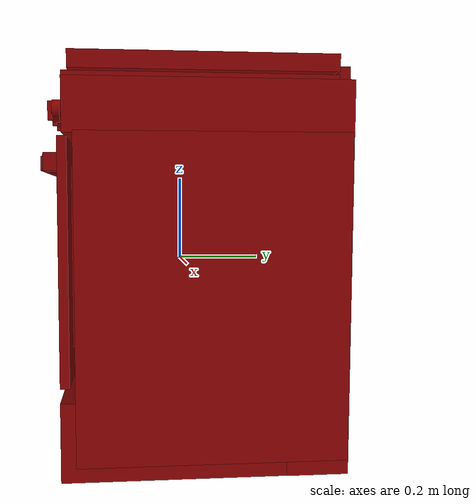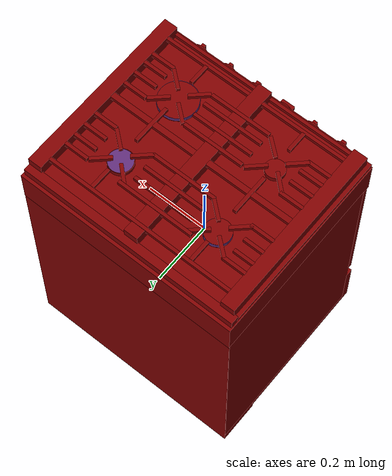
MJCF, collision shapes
<?xml version='1.0' encoding='UTF-8'?>
<mujoco model="model">
  <compiler angle="radian"/>
  <asset>
    <mesh file="visuals/knob_front_left.obj" name="knob_front_left_vis"/>
    <mesh file="visuals/knob_front_right.obj" name="knob_front_right_vis"/>
    <mesh file="visuals/knob_rear_left.obj" name="knob_rear_left_vis"/>
    <mesh file="visuals/knob_rear_right.obj" name="knob_rear_right_vis"/>
    <mesh file="visuals/Body001.obj" name="Body001_vis"/>
    <mesh file="visuals/Door001.obj" name="Door001_vis"/>
    <mesh file="visuals/Door001_Clear.obj" name="Door001_Clear_vis"/>
    <mesh file="visuals/Knob001.obj" name="Knob001_vis"/>
    <mesh file="visuals/Knob002.obj" name="Knob002_vis"/>
    <mesh file="visuals/Shelf001.obj" name="Shelf001_vis"/>
    <texture file="visuals/T_BC001.png" name="Body001_material" type="2d"/>
    <material name="Body001_material" rgba="1 1 1 1.0" texture="Body001_material" shininess="0.1" specular="5"/>
    <texture file="visuals/T_BC001.png" name="knob_front_left_material" type="2d"/>
    <material name="knob_front_left_material" rgba="1 1 1 1.0" texture="knob_front_left_material" shininess="0.4472135901451111" specular="0.3103448502657381"/>
    <texture file="visuals/T_BC001.png" name="knob_front_right_material" type="2d"/>
    <material name="knob_front_right_material" rgba="1 1 1 1.0" texture="knob_front_right_material" shininess="0.4472135901451111" specular="0.3103448502657381"/>
    <texture file="visuals/T_BC001.png" name="knob_rear_left_material" type="2d"/>
    <material name="knob_rear_left_material" rgba="1 1 1 1.0" texture="knob_rear_left_material" shininess="0.4472135901451111" specular="0.3103448502657381"/>
    <texture file="visuals/T_BC001.png" name="knob_rear_right_material" type="2d"/>
    <material name="knob_rear_right_material" rgba="1 1 1 1.0" texture="knob_rear_right_material" shininess="0.4472135901451111" specular="0.3103448502657381"/>
    <texture file="visuals/T_BC001.png" name="Door001_material" type="2d"/>
    <material name="Door001_material" rgba="1 1 1 1.0" texture="Door001_material" shininess="0.1" specular="5"/>
    <texture file="visuals/T_BC001.png" name="Door001_Clear_material" type="2d"/>
    <material name="Door001_Clear_material" rgba="1 1 1 0.5" texture="Door001_Clear_material" shininess="0.5" specular="0.3103448502657381"/>
    <texture file="visuals/T_BC001.png" name="Knob001_material" type="2d"/>
    <material name="Knob001_material" rgba="1 1 1 1.0" texture="Knob001_material" shininess="0.4472135901451111" specular="0.3103448502657381"/>
    <texture file="visuals/T_BC001.png" name="Knob002_material" type="2d"/>
    <material name="Knob002_material" rgba="1 1 1 1.0" texture="Knob002_material" shininess="0.4472135901451111" specular="0.3103448502657381"/>
    <texture file="visuals/T_BC001.png" name="Shelf001_material" type="2d"/>
    <material name="Shelf001_material" rgba="1 1 1 1.0" texture="Shelf001_material" shininess="0.4472135901451111" specular="0.3103448502657381"/>
  </asset>
  <default>
    <default class="visual">
      <geom conaffinity="0" contype="0" group="1" type="mesh"/>
    </default>
    <default class="collision">
      <geom group="0" rgba="0.5 0 0 0.5"/>
    </default>
    <default class="spawn">
      <geom group="0" rgba="1 1 1 0.5" contype="0" conaffinity="0"/>
      <site group="0" rgba="1 1 1 0.5"/>
    </default>
    <default class="region">
      <geom group="1" conaffinity="0" contype="0" rgba="0 1 0 0"/>
    </default>
  </default>
  <worldbody>
    <body>
      <body name="object">
        <site type="cylinder" rgba="0.3 0.4 1 0.5" size="0.059067532420158386 0.0059981681406497955" pos="0.1637333780527115 -0.08896008133888245 0.41712743043899536" name="burner_on_front_right"/>
        <site type="cylinder" rgba="0.3 0.4 1 0.5" size="0.03581749647855759 0.006448989734053612" pos="0.1625681072473526 0.14847798645496368 0.4174721837043762" name="burner_on_rear_right"/>
        <site type="cylinder" rgba="0.3 0.4 1 0.5" size="0.03923388943076134 0.006164595950394869" pos="-0.1613815873861313 0.14856909215450287 0.4168274998664856" name="burner_on_rear_left"/>
        <site type="cylinder" rgba="0.3 0.4 1 0.5" size="0.027678173035383224 0.006031689699739218" pos="-0.16317451000213623 -0.0871630609035492 0.41746026277542114" name="burner_on_front_left"/>
        <geom mesh="Body001_vis" type="mesh" solimp="0.998 0.998 0.001" solref="0.001 1" density="100" friction="0.95 0.3 0.1" class="visual" material="Body001_material"/>
        <geom class="collision" type="box" pos="-0.3228236734867096 0.04421297088265419 -0.06405051052570343" size="0.02653951570391655 0.28820371627807617 0.347449392080307" quat="1.0 0.0 0.0 0.0"/>
        <geom class="collision" type="box" pos="0.32221442461013794 0.044317618012428284 -0.06405049562454224" size="0.02715783752501011 0.2881529629230499 0.3474196195602417" quat="1.0 0.0 0.0 0.0"/>
        <geom class="collision" type="box" pos="4.4401540435501374e-06 0.03426617011427879 0.3346153199672699" size="0.3493633568286896 0.2996474802494049 0.05575976520776749" quat="1.0 0.0 0.0 0.0"/>
        <geom class="collision" type="box" pos="0.0002251090481877327 0.020618697628378868 -0.3580223321914673" size="0.3468468487262726 0.29568082094192505 0.0842985138297081" quat="1.0 0.0 0.0 0.0"/>
        <geom class="collision" type="box" pos="-0.0008288638200610876 0.049210354685783386 0.25344952940940857" size="0.3056583106517792 0.2670842707157135 0.02249942719936371" quat="1.0 0.0 0.0 0.0"/>
        <geom class="collision" type="box" pos="-0.0008288638200610876 0.0492422953248024 -0.2252667397260666" size="0.3038848340511322 0.26707693934440613 0.025592513382434845" quat="1.0 0.0 0.0 0.0"/>
        <geom class="collision" type="box" pos="-0.00036194996209815145 0.26694294810295105 -0.08169431984424591" size="0.34876078367233276 0.06697166711091995 0.36061516404151917" quat="1.0 0.0 0.0 0.0"/>
        <geom class="collision" type="box" pos="-0.00039120158180594444 0.024361329153180122 0.42394471168518066" size="0.021668938919901848 0.2777353525161743 0.018190616741776466" quat="1.0 0.0 0.0 0.0"/>
        <geom class="collision" type="box" pos="0.32362258434295654 0.024361329153180122 0.42394471168518066" size="0.021668938919901848 0.2777353525161743 0.018190616741776466" quat="1.0 0.0 0.0 0.0"/>
        <geom class="collision" type="box" pos="-0.31447410583496094 0.024361329153180122 0.42394471168518066" size="0.021668938919901848 0.2777353525161743 0.018190616741776466" quat="1.0 0.0 0.0 0.0"/>
        <geom class="collision" type="box" pos="0.0047678276896476746 0.016298767179250717 0.4360669255256653" size="0.29770833253860474 0.008956014178693295 0.0055671450681984425" quat="1.0 0.0 0.0 0.0"/>
        <geom class="collision" type="box" pos="0.0047678276896476746 -0.21208155155181885 0.43581724166870117" size="0.29768821597099304 0.005264257080852985 0.005566910374909639" quat="1.0 0.0 0.0 0.0"/>
        <geom class="collision" type="box" pos="0.0047678276896476746 0.2651553750038147 0.43761682510375977" size="0.29768869280815125 0.005264259874820709 0.005566915962845087" quat="1.0 0.0 0.0 0.0"/>
        <geom class="collision" type="box" pos="0.0008303839713335037 0.20434533059597015 0.43761682510375977" size="0.1207415908575058 0.005264498759061098 0.0055671450681984425" quat="1.0 0.0 0.0 0.0"/>
        <geom class="collision" type="box" pos="0.0008303839713335037 0.08729008585214615 0.43761682510375977" size="0.10313563793897629 0.005264495499432087 0.0055669271387159824" quat="1.0 0.0 0.0 0.0"/>
        <geom class="collision" type="box" pos="0.0008303839713335037 0.1292971521615982 0.43761682510375977" size="0.09624840319156647 0.005264198407530785 0.00556693272665143" quat="1.0 0.0 0.0 0.0"/>
        <geom class="collision" type="box" pos="0.0008303839713335037 0.16908317804336548 0.43761682510375977" size="0.09624840319156647 0.005264206323772669 0.005566938314586878" quat="1.0 0.0 0.0 0.0"/>
        <geom class="collision" type="box" pos="0.0008303839713335037 -0.033874429762363434 0.43761682510375977" size="0.09624840319156647 0.0052642133086919785 0.0055669439025223255" quat="1.0 0.0 0.0 0.0"/>
        <geom class="collision" type="box" pos="0.0008303839713335037 -0.07346227020025253 0.43761682510375977" size="0.09624840319156647 0.005264221224933863 0.005566949490457773" quat="1.0 0.0 0.0 0.0"/>
        <geom class="collision" type="box" pos="0.0008303839713335037 -0.11459378898143768 0.43761682510375977" size="0.09624840319156647 0.005264229141175747 0.005566955078393221" quat="1.0 0.0 0.0 0.0"/>
        <geom class="collision" type="box" pos="0.0008303839713335037 -0.1484818458557129 0.43761682510375977" size="0.09624840319156647 0.005264237057417631 0.005566960666328669" quat="1.0 0.0 0.0 0.0"/>
        <geom class="collision" type="box" pos="0.26424527168273926 -0.1484818458557129 0.43761682510375977" size="0.03698926046490669 0.005264244973659515 0.005566966254264116" quat="1.0 0.0 0.0 0.0"/>
        <geom class="collision" type="box" pos="0.26424527168273926 -0.11511340737342834 0.43761682510375977" size="0.03698926046490669 0.005264252424240112 0.005566971842199564" quat="1.0 0.0 0.0 0.0"/>
        <geom class="collision" type="box" pos="0.26424527168273926 -0.07458394020795822 0.43761682510375977" size="0.03698926046490669 0.0052642603404819965 0.005566977430135012" quat="1.0 0.0 0.0 0.0"/>
        <geom class="collision" type="box" pos="0.26424527168273926 -0.0321384072303772 0.43761682510375977" size="0.03698926046490669 0.005264268256723881 0.005566983018070459" quat="1.0 0.0 0.0 0.0"/>
        <geom class="collision" type="box" pos="0.26424527168273926 0.08755050599575043 0.43761682510375977" size="0.03698926046490669 0.005264274310320616 0.005566988606005907" quat="1.0 0.0 0.0 0.0"/>
        <geom class="collision" type="box" pos="0.26424527168273926 0.12967947125434875 0.43761682510375977" size="0.03698926046490669 0.005264285020530224 0.005566994193941355" quat="1.0 0.0 0.0 0.0"/>
        <geom class="collision" type="box" pos="0.26424527168273926 0.16894111037254333 0.43761682510375977" size="0.03698926046490669 0.005264293868094683 0.0055669997818768024" quat="1.0 0.0 0.0 0.0"/>
        <geom class="collision" type="box" pos="0.26424527168273926 0.2044767588376999 0.43761682510375977" size="0.03698926046490669 0.005264298990368843 0.00556700536981225" quat="1.0 0.0 0.0 0.0"/>
        <geom class="collision" type="box" pos="-0.25742536783218384 -0.03213844448328018 0.43761682510375977" size="0.03698926046490669 0.005264307837933302 0.005567010957747698" quat="1.0 0.0 0.0 0.0"/>
        <geom class="collision" type="box" pos="-0.25742536783218384 -0.0745839774608612 0.43761682510375977" size="0.03698926046490669 0.005264315754175186 0.0055670165456831455" quat="1.0 0.0 0.0 0.0"/>
        <geom class="collision" type="box" pos="-0.25742536783218384 -0.11511343717575073 0.43761682510375977" size="0.03698926046490669 0.00526432367041707 0.005567022133618593" quat="1.0 0.0 0.0 0.0"/>
        <geom class="collision" type="box" pos="-0.25742536783218384 -0.14848189055919647 0.43761682510375977" size="0.03698926046490669 0.005264331120997667 0.005567027721554041" quat="1.0 0.0 0.0 0.0"/>
        <geom class="collision" type="box" pos="-0.25742536783218384 0.08808575570583344 0.43761682510375977" size="0.03698926046490669 0.005264337174594402 0.005567033309489489" quat="1.0 0.0 0.0 0.0"/>
        <geom class="collision" type="box" pos="-0.2627442479133606 0.12931585311889648 0.43761682510375977" size="0.03167038783431053 0.00526434788480401 0.005567038897424936" quat="1.0 0.0 0.0 0.0"/>
        <geom class="collision" type="box" pos="-0.2627442479133606 0.1698453277349472 0.43761682510375977" size="0.03167038783431053 0.005264353007078171 0.005567044485360384" quat="1.0 0.0 0.0 0.0"/>
        <geom class="collision" type="box" pos="-0.25742536783218384 0.20307059586048126 0.43761682510375977" size="0.03698926046490669 0.00526436185464263 0.005567050073295832" quat="1.0 0.0 0.0 0.0"/>
        <geom class="collision" type="box" pos="-0.20092473924160004 0.1830373853445053 0.43761682510375977" size="0.00526449317112565 0.03167038410902023 0.0055671450681984425" quat="0.4248861074447632 0.0 0.0 -0.9052467942237854"/>
        <geom class="collision" type="box" pos="-0.20446470379829407 0.10843002796173096 0.43761682510375977" size="0.00526449317112565 0.03167038410902023 0.0055671450681984425" quat="0.9174258708953857 0.0 0.0 -0.3979067802429199"/>
        <geom class="collision" type="box" pos="-0.12504971027374268 0.10973607003688812 0.43761682510375977" size="0.005264492239803076 0.03167038410902023 0.0055671450681984425" quat="0.9063077569007874 0.0 0.0 0.4226183593273163"/>
        <geom class="collision" type="box" pos="-0.1253177523612976 0.18213440477848053 0.4360778331756592" size="0.00526449317112565 0.031670380383729935 0.005567144602537155" quat="0.39578354358673096 0.012138420715928078 -0.006812041625380516 0.9182383418083191"/>
        <geom class="collision" type="box" pos="-0.12524142861366272 -0.05387304723262787 0.4366794228553772" size="0.00526449317112565 0.03167038410902023 0.00556714553385973" quat="0.3957822620868683 0.012183103710412979 -0.0067083826288580894 0.9182390570640564"/>
        <geom class="collision" type="box" pos="-0.12504971027374268 -0.12614192068576813 0.43761682510375977" size="0.00526449317112565 0.03167038410902023 0.0055671450681984425" quat="0.9063077569007874 0.0 0.0 0.4226183593273163"/>
        <geom class="collision" type="box" pos="-0.20446470379829407 -0.1274479478597641 0.43761682510375977" size="0.00526449317112565 0.03167038410902023 0.0055671450681984425" quat="0.9174258708953857 0.0 0.0 -0.3979067802429199"/>
        <geom class="collision" type="box" pos="-0.2021249234676361 -0.05436670035123825 0.43761682510375977" size="0.005264492705464363 0.03167038783431053 0.0055671450681984425" quat="0.4032878279685974 0.0 0.0 -0.9150732159614563"/>
        <geom class="collision" type="box" pos="0.12622053921222687 -0.05284060537815094 0.43761682510375977" size="0.005264492705464363 0.03167038783431053 0.0055671450681984425" quat="0.4248861074447632 0.0 0.0 -0.9052467942237854"/>
        <geom class="collision" type="box" pos="0.12268057465553284 -0.1274479478597641 0.43761682510375977" size="0.00526449317112565 0.03167038410902023 0.0055671450681984425" quat="0.9174258708953857 0.0 0.0 -0.3979067802429199"/>
        <geom class="collision" type="box" pos="0.20209558308124542 -0.12614192068576813 0.43761682510375977" size="0.00526449317112565 0.03167038410902023 0.0055671450681984425" quat="0.9063077569007874 0.0 0.0 0.4226183593273163"/>
        <geom class="collision" type="box" pos="0.20198194682598114 -0.053634099662303925 0.4370323419570923" size="0.00526449317112565 0.03167038410902023 0.005567144602537155" quat="0.3957773447036743 0.012342442758381367 -0.006338759325444698 0.9182416796684265"/>
        <geom class="collision" type="box" pos="0.20184341073036194 0.18108920753002167 0.43659287691116333" size="0.00526449317112565 0.03167038410902023 0.0055671450681984425" quat="0.39583688974380493 0.010260934941470623 -0.011167514137923717 0.9181956052780151"/>
        <geom class="collision" type="box" pos="0.20209558308124542 0.10869550704956055 0.43761682510375977" size="0.005264492239803076 0.03167038410902023 0.0055671450681984425" quat="0.9063077569007874 0.0 0.0 0.4226183593273163"/>
        <geom class="collision" type="box" pos="0.12268058210611343 0.10738946497440338 0.43761682510375977" size="0.00526449317112565 0.03167038410902023 0.0055671450681984425" quat="0.9174258708953857 0.0 0.0 -0.3979067802429199"/>
        <geom class="collision" type="box" pos="0.12624725699424744 0.1819962114095688 0.43761682510375977" size="0.0052644950337708 0.031670380383729935 0.0055671450681984425" quat="0.4041678309440613 0.0 0.0 -0.9146848320960999"/>
        <geom class="collision" type="box" pos="0.16399243474006653 0.22711363434791565 0.43761682510375977" size="0.005264503415673971 0.033892951905727386 0.005567055661231279" quat="1.0 0.0 0.0 0.0"/>
        <geom class="collision" type="box" pos="0.16399243474006653 0.02181887999176979 0.43761682510375977" size="0.005264506209641695 0.06179066747426987 0.005567061249166727" quat="1.0 0.0 0.0 0.0"/>
        <geom class="collision" type="box" pos="0.16399243474006653 -0.1757606863975525 0.43761682510375977" size="0.005264503415673971 0.03224439546465874 0.005567066837102175" quat="1.0 0.0 0.0 0.0"/>
        <geom class="collision" type="box" pos="-0.16274967789649963 -0.1757606863975525 0.43761682510375977" size="0.005264503415673971 0.032244425266981125 0.0055670724250376225" quat="1.0 0.0 0.0 0.0"/>
        <geom class="collision" type="box" pos="-0.16384649276733398 0.22711363434791565 0.43761682510375977" size="0.005264503415673971 0.03389314189553261 0.00556707801297307" quat="1.0 0.0 0.0 0.0"/>
        <geom class="collision" type="box" pos="-0.16352134943008423 0.02181887999176979 0.43761682510375977" size="0.005264506209641695 0.06179093196988106 0.005567083600908518" quat="1.0 0.0 0.0 0.0"/>
        <geom class="collision" type="cylinder" pos="0.16282539069652557 0.1482137143611908 0.41617870330810547" size="0.03744648024439812 0.007102586328983307" quat="1.0 0.0 0.0 0.0"/>
        <geom class="collision" type="cylinder" pos="-0.16175232827663422 0.148213729262352 0.4161028265953064" size="0.03860156238079071 0.0073216743767261505" quat="1.0 0.0 0.0 0.0"/>
        <geom class="collision" type="cylinder" pos="-0.16332712769508362 -0.08721385151147842 0.41603928804397583" size="0.02939481846988201 0.007556240539997816" quat="1.0 0.0 0.0 0.0"/>
        <geom class="collision" type="cylinder" pos="0.16372527182102203 -0.08834237605333328 0.4162471890449524" size="0.05829683318734169 0.007227994967252016" quat="1.0 0.0 0.0 0.0"/>
        <geom class="collision" type="box" pos="0.0047678276896476746 -0.2487623542547226 0.4112606644630432" size="0.2976978123188019 0.005264378618448973 0.005567022133618593" quat="1.0 0.0 0.0 0.0"/>
        <geom class="collision" type="box" pos="-0.0011420953087508678 0.31078073382377625 0.4033353924751282" size="0.3450567424297333 0.012952571734786034 0.013233006931841373" quat="1.0 0.0 0.0 0.0"/>
        <geom class="collision" type="box" pos="-0.0011420953087508678 0.01791263371706009 0.39536815881729126" size="0.3450569808483124 0.2833506166934967 0.005265817977488041" quat="1.0 0.0 0.0 0.0"/>
        <geom class="collision" type="box" pos="-0.2943744957447052 -0.018107280135154724 0.14398175477981567" size="0.00930354930460453 0.1873529851436615 0.004637975711375475" quat="1.0 0.0 0.0 0.0"/>
        <geom class="collision" type="box" pos="-0.2943744957447052 -0.018107280135154724 0.10077381134033203" size="0.00930354930460453 0.1873529851436615 0.004637975711375475" quat="1.0 0.0 0.0 0.0"/>
        <geom class="collision" type="box" pos="-0.2943744957447052 -0.018107280135154724 0.058982521295547485" size="0.00930354930460453 0.1873529851436615 0.004637975711375475" quat="1.0 0.0 0.0 0.0"/>
        <geom class="collision" type="box" pos="-0.2943744957447052 -0.018107280135154724 0.016955122351646423" size="0.00930354930460453 0.1873529851436615 0.004637975711375475" quat="1.0 0.0 0.0 0.0"/>
        <geom class="collision" type="box" pos="-0.2943744957447052 -0.018107280135154724 -0.024600058794021606" size="0.00930354930460453 0.1873529851436615 0.004637975711375475" quat="1.0 0.0 0.0 0.0"/>
        <geom class="collision" type="box" pos="-0.2943744957447052 -0.018107280135154724 -0.06662745773792267" size="0.00930354930460453 0.1873529851436615 0.004637975711375475" quat="1.0 0.0 0.0 0.0"/>
        <geom class="collision" type="box" pos="0.2936819791793823 -0.018107280135154724 -0.06662745773792267" size="0.00930354930460453 0.1873529851436615 0.004637975711375475" quat="1.0 0.0 0.0 0.0"/>
        <geom class="collision" type="box" pos="0.2936819791793823 -0.018107280135154724 -0.024600058794021606" size="0.00930354930460453 0.1873529851436615 0.004637975711375475" quat="1.0 0.0 0.0 0.0"/>
        <geom class="collision" type="box" pos="0.2936819791793823 -0.018107280135154724 0.016955122351646423" size="0.00930354930460453 0.1873529851436615 0.004637975711375475" quat="1.0 0.0 0.0 0.0"/>
        <geom class="collision" type="box" pos="0.2936819791793823 -0.018107280135154724 0.058982521295547485" size="0.00930354930460453 0.1873529851436615 0.004637975711375475" quat="1.0 0.0 0.0 0.0"/>
        <geom class="collision" type="box" pos="0.2936819791793823 -0.018107280135154724 0.10077381134033203" size="0.00930354930460453 0.1873529851436615 0.004637975711375475" quat="1.0 0.0 0.0 0.0"/>
        <geom class="collision" type="box" pos="0.2936819791793823 -0.018107280135154724 0.14398175477981567" size="0.00930354930460453 0.1873529851436615 0.004637975711375475" quat="1.0 0.0 0.0 0.0"/>
        <body name="knob_front_left">
          <joint axis="0.0 -1.0 0.0" pos="-0.23487229645252228 -0.2886980175971985 0.3338550329208374" limited="true" name="knob_front_left_joint" range="0.0 3.141592653589793" type="hinge" damping="0.05" armature="0.001"/>
          <geom mesh="knob_front_left_vis" type="mesh" solimp="0.998 0.998 0.001" solref="0.001 1" density="100" friction="0.95 0.3 0.1" class="visual" material="knob_front_left_material"/>
          <geom class="collision" type="box" pos="-0.2350361943244934 -0.2915816307067871 0.3337843716144562" size="0.00699011841788888 0.010168736800551414 0.020011331886053085" quat="1.0 0.0 0.0 0.0" name="knob_front_left_main"/>
          <geom class="collision" type="cylinder" pos="-0.2351428121328354 -0.28417178988456726 0.33377641439437866" size="0.023643560707569122 0.0074795992113649845" quat="0.7071068286895752 0.7071067690849304 0.0 0.0"/>
        </body>
        <body name="knob_front_right">
          <joint axis="0.0 -1.0 0.0" pos="0.24667339026927948 -0.2886980175971985 0.3338550329208374" limited="true" name="knob_front_right_joint" range="0.0 3.141592653589793" type="hinge" damping="0.05" armature="0.001"/>
          <geom mesh="knob_front_right_vis" type="mesh" solimp="0.998 0.998 0.001" solref="0.001 1" density="100" friction="0.95 0.3 0.1" class="visual" material="knob_front_right_material"/>
          <geom class="collision" type="box" pos="0.2467217743396759 -0.29255223274230957 0.3341343402862549" size="0.005518197547644377 0.009529771283268929 0.0201987586915493" quat="1.0 0.0 0.0 0.0" name="knob_front_right_main"/>
          <geom class="collision" type="cylinder" pos="0.24671876430511475 -0.28394296765327454 0.3340541124343872" size="0.02354443073272705 0.007998556829988956" quat="0.7071068286895752 0.7071067690849304 0.0 0.0"/>
        </body>
        <body name="knob_rear_left">
          <joint axis="0.0 -1.0 0.0" pos="-0.13924579322338104 -0.2886980175971985 0.3338550329208374" limited="true" name="knob_rear_left_joint" range="0.0 3.141592653589793" type="hinge" damping="0.05" armature="0.001"/>
          <geom mesh="knob_rear_left_vis" type="mesh" solimp="0.998 0.998 0.001" solref="0.001 1" density="100" friction="0.95 0.3 0.1" class="visual" material="knob_rear_left_material"/>
          <geom class="collision" type="box" pos="-0.13901695609092712 -0.29458537697792053 0.3338766098022461" size="0.006420934107154608 0.007175837643444538 0.020258767530322075" quat="1.0 0.0 0.0 0.0" name="knob_rear_left_main"/>
          <geom class="collision" type="cylinder" pos="-0.1389218121767044 -0.28393667936325073 0.3343225419521332" size="0.02362123504281044 0.008074896410107613" quat="0.7071068286895752 0.7071067690849304 0.0 0.0"/>
        </body>
        <body name="knob_rear_right">
          <joint axis="0.0 -1.0 0.0" pos="0.1500362604856491 -0.2886980175971985 0.3338550329208374" limited="true" name="knob_rear_right_joint" range="0.0 3.141592653589793" type="hinge" damping="0.05" armature="0.001"/>
          <geom mesh="knob_rear_right_vis" type="mesh" solimp="0.998 0.998 0.001" solref="0.001 1" density="100" friction="0.95 0.3 0.1" class="visual" material="knob_rear_right_material"/>
          <geom class="collision" type="box" pos="0.14990220963954926 -0.2924266457557678 0.33381783962249756" size="0.005885318387299776 0.009477458894252777 0.019870443269610405" quat="1.0 0.0 0.0 0.0" name="knob_rear_right_main"/>
          <geom class="collision" type="cylinder" pos="0.14983241260051727 -0.2840564548969269 0.33405232429504395" size="0.023539787158370018 0.008175491355359554" quat="0.7071068286895752 0.7071067690849304 0.0 0.0"/>
        </body>
        <body name="Door001">
          <joint axis="1.0 0.0 0.0" pos="4.5746564865112305e-06 -0.2755953371524811 -0.2446918934583664" limited="true" name="Door001_joint" range="0.0 1.5707963267948966" type="hinge" damping="1" frictionloss="1" armature=".01" stiffness="0.05"/>
          <geom mesh="Door001_vis" type="mesh" solimp="0.998 0.998 0.001" solref="0.001 1" density="100" friction="0.95 0.3 0.1" class="visual" material="Door001_material"/>
          <geom class="collision" type="box" pos="-0.0008288606186397374 -0.2436554729938507 0.022665686905384064" size="0.271235853433609 0.009919335134327412 0.19373451173305511" quat="1.0 0.0 0.0 0.0"/>
          <geom class="collision" type="box" pos="-0.0059113106690347195 -0.3282778263092041 0.22902655601501465" size="0.14638367295265198 0.004095393233001232 0.016338421031832695" quat="1.0 0.0 0.0 0.0"/>
          <geom class="collision" type="box" pos="0.19057558476924896 -0.3187209665775299 0.22944730520248413" size="0.05809188634157181 0.0040954952128231525 0.014873121865093708" quat="0.9973392486572266 0.0 0.0 0.07290007919073105"/>
          <geom class="collision" type="box" pos="-0.2048257440328598 -0.31675368547439575 0.2285582423210144" size="0.05809188634157181 0.0040954952128231525 0.017374254763126373" quat="0.9978099465370178 0.0 0.0 -0.0661461278796196"/>
          <geom class="collision" type="box" pos="-0.2571331262588501 -0.29300740361213684 0.23118562996387482" size="0.010822142474353313 0.01282779686152935 0.017619257792830467" quat="1.0 0.0 0.0 0.0"/>
          <geom class="collision" type="box" pos="0.25167912244796753 -0.29462453722953796 0.22591449320316315" size="0.014690333046019077 0.017415039241313934 0.01909133791923523" quat="1.0 0.0 0.0 0.0"/>
          <geom class="collision" type="box" pos="-0.0006114583229646087 -0.2657966613769531 0.014155924320220947" size="0.34081459045410156 0.009919864125549793 0.2596246004104614" quat="1.0 0.0 0.0 0.0"/>
          <body name="Door001_Clear">
            <geom mesh="Door001_Clear_vis" type="mesh" solimp="0.998 0.998 0.001" solref="0.001 1" density="100" friction="0.95 0.3 0.1" class="visual" material="Door001_Clear_material"/>
            <geom class="collision" type="box" pos="0.0009779836982488632 -0.26424384117126465 -0.008626081049442291" size="0.2628186047077179 0.0037432776298373938 0.199416846036911" quat="1.0 0.0 0.0 0.0"/>
          </body>
        </body>
        <body name="Knob001">
          <joint axis="0.0 1.0 0.0" pos="-0.043572861701250076 -0.2886980175971985 0.3338550329208374" limited="true" name="Knob001_joint" range="0.0 5.235987755982989" type="hinge" damping="0.05" armature="0.001"/>
          <geom mesh="Knob001_vis" type="mesh" solimp="0.998 0.998 0.001" solref="0.001 1" density="100" friction="0.95 0.3 0.1" class="visual" material="Knob001_material"/>
          <geom class="collision" type="box" pos="-0.04366318881511688 -0.2955879867076874 0.3336108922958374" size="0.020274225622415543 0.012124400585889816 0.007020555902272463" quat="1.0 0.0 0.0 0.0"/>
          <geom class="collision" type="cylinder" pos="-0.04343428090214729 -0.28454893827438354 0.3336174190044403" size="0.02350432612001896 0.007136811502277851" quat="0.7071068286895752 0.7071067690849304 0.0 0.0"/>
        </body>
        <body name="Knob002">
          <joint axis="0.0 1.0 0.0" pos="0.053798265755176544 -0.2886980175971985 0.33437579870224" limited="true" name="Knob002_joint" range="0.0 5.585053606381854" type="hinge" damping="0.05" armature="0.001"/>
          <geom mesh="Knob002_vis" type="mesh" solimp="0.998 0.998 0.001" solref="0.001 1" density="100" friction="0.95 0.3 0.1" class="visual" material="Knob002_material"/>
          <geom class="collision" type="box" pos="0.05459413677453995 -0.294563353061676 0.33396729826927185" size="0.007460564374923706 0.007712928112596273 0.020356403663754463" quat="1.0 0.0 0.0 0.0"/>
          <geom class="collision" type="cylinder" pos="0.05390051007270813 -0.2845693826675415 0.3340534269809723" size="0.02359602600336075 0.00766044482588768" quat="0.7071068286895752 0.7071067690849304 0.0 0.0"/>
        </body>
        <body name="Shelf001">
          <joint axis="0.0 -1.0 0.0" pos="0.0001221299171447754 -0.021656475961208344 -0.08267852663993835" limited="true" name="Shelf001_joint" range="0.0 0.35" type="slide" damping="1" frictionloss="1" armature=".01" stiffness="0.05"/>
          <geom mesh="Shelf001_vis" type="mesh" solimp="0.998 0.998 0.001" solref="0.001 1" density="100" friction="0.95 0.3 0.1" class="visual" material="Shelf001_material"/>
          <geom class="collision" type="box" pos="-0.0008288638200610876 -0.02703917771577835 0.02624186873435974" size="0.28248241543769836 0.18181200325489044 0.004427298903465271" quat="1.0 0.0 0.0 0.0"/>
        </body>
        <site name="burner_front_right_place_site" type="cylinder" rgba="0.3 0.4 1 0" size="0.059067532420158386 0.0059981681406497955" pos="0.1637333780527115 -0.08896008133888245 0.41712743043899536"/>
        <site name="burner_rear_right_place_site" type="cylinder" rgba="0.3 0.4 1 0" size="0.03581749647855759 0.006448989734053612" pos="0.1625681072473526 0.14847798645496368 0.4174721837043762"/>
        <site name="burner_rear_left_place_site" type="cylinder" rgba="0.3 0.4 1 0" size="0.03923388943076134 0.006164595950394869" pos="-0.1613815873861313 0.14856909215450287 0.4168274998664856"/>
        <site name="burner_front_left_place_site" type="cylinder" rgba="0.3 0.4 1 0" size="0.027678173035383224 0.006031689699739218" pos="-0.16317451000213623 -0.0871630609035492 0.41746026277542114"/>
        <geom class="region" name="reg_main" type="box" pos="0.0 0.028974786400794983 -0.0260455459356308" size="0.3493722677230835 0.304942786693573 0.4162791967391968"/>
        <geom class="region" name="reg_int" type="box" pos="-0.003097549080848694 0.005800381302833557 0.015434935688972473" size="0.3019537180662155 0.24685098230838776 0.22318118810653687"/>
      </body>
    </body>
  </worldbody>
  <actuator>
    <motor name="knob_front_left_joint_actuator" joint="knob_front_left_joint" gear="10"/>
    <motor name="knob_front_right_joint_actuator" joint="knob_front_right_joint" gear="10"/>
    <motor name="knob_rear_left_joint_actuator" joint="knob_rear_left_joint" gear="10"/>
    <motor name="knob_rear_right_joint_actuator" joint="knob_rear_right_joint" gear="10"/>
    <motor name="Door001_joint_actuator" joint="Door001_joint" gear="50"/>
    <motor name="Knob001_joint_actuator" joint="Knob001_joint" gear="50"/>
    <motor name="Knob002_joint_actuator" joint="Knob002_joint" gear="50"/>
    <motor name="Shelf001_joint_actuator" joint="Shelf001_joint" gear="50"/>
  </actuator>
</mujoco>
